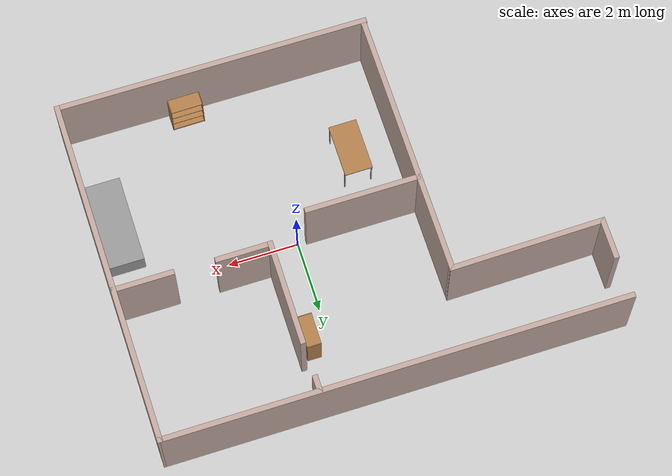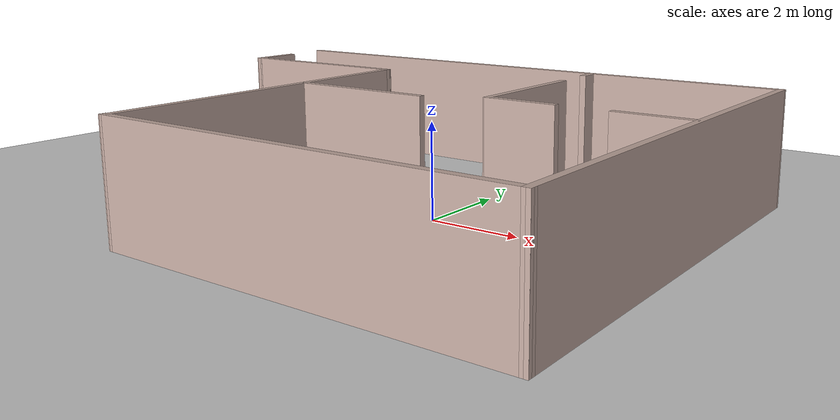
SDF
<sdf version="1.7">
 <world name="default">
  <light name="sun" type="directional">
   <pose>0 0 10 0 -0 0</pose>
   <diffuse>0.8 0.8 0.8 1</diffuse>
   <specular>0.2 0.2 0.2 1</specular>
   <attenuation>
    <range>1000</range>
    <constant>0.9</constant>
    <linear>0.01</linear>
    <quadratic>0.001</quadratic>
   </attenuation>
   <direction>-0.5 0.1 -0.9</direction>
   <spot><inner_angle>0</inner_angle><outer_angle>0</outer_angle><falloff>0</falloff></spot>
  </light>
  <model name="ground_plane">
   <static>1</static>
   <link name="link">
    <collision name="collision">
     <geometry><plane><normal>0 0 1</normal><size>100 100</size></plane></geometry>
     <surface>
      <contact><collide_bitmask>65535</collide_bitmask></contact>
      <friction><ode><mu>100</mu><mu2>50</mu2></ode></friction>
     </surface>
    </collision>
    <visual name="visual">
     <cast_shadows>0</cast_shadows>
     <geometry><plane><normal>0 0 1</normal><size>100 100</size></plane></geometry>
     <material>
      <script><uri>file://media/materials/scripts/gazebo.material</uri><name>Gazebo/Grey</name></script>
     </material>
    </visual>
   </link>
  </model>
  <gravity>0 0 -9.8</gravity>
  <magnetic_field>6e-06 2.3e-05 -4.2e-05</magnetic_field>
  <atmosphere type="adiabatic"/>
  <physics type="ode">
   <max_step_size>0.001</max_step_size>
   <real_time_factor>1</real_time_factor>
   <real_time_update_rate>1000</real_time_update_rate>
  </physics>
  <scene><ambient>0.4 0.4 0.4 1</ambient><background>0.7 0.7 0.7 1</background><shadows>1</shadows></scene>
  <spherical_coordinates>
   <surface_model>EARTH_WGS84</surface_model>
   <latitude_deg>0</latitude_deg>
   <longitude_deg>0</longitude_deg>
   <elevation>0</elevation>
   <heading_deg>0</heading_deg>
  </spherical_coordinates>
  <model name="home2018">
   <pose>-1.25017 0.009364 0 0 -0 0</pose>
   <link name="Wall_0">
    <collision name="Wall_0_Collision">
     <geometry><box><size>13.1702 0.15 2.5</size></box></geometry>
     <pose>0 0 1.25 0 -0 0</pose>
    </collision>
    <visual name="Wall_0_Visual">
     <pose>0 0 1.25 0 -0 0</pose>
     <geometry><box><size>13.1702 0.15 2.5</size></box></geometry>
     <material>
      <script><uri>file://media/materials/scripts/gazebo.material</uri><name>Gazebo/Grey</name></script>
      <ambient>0.760784 0.662745 0.627451 1</ambient>
     </material>
     <meta><layer>0</layer></meta>
    </visual>
    <pose>-0.026804 4.8851 0 0 -0 0</pose>
   </link>
   <link name="Wall_1">
    <collision name="Wall_1_Collision">
     <geometry><box><size>9.92024 0.15 2.5</size></box></geometry>
     <pose>0 0 1.25 0 -0 0</pose>
    </collision>
    <visual name="Wall_1_Visual">
     <pose>0 0 1.25 0 -0 0</pose>
     <geometry><box><size>9.92024 0.15 2.5</size></box></geometry>
     <material>
      <script><uri>file://media/materials/scripts/gazebo.material</uri><name>Gazebo/Grey</name></script>
      <ambient>0.760784 0.662745 0.627451 1</ambient>
     </material>
     <meta><layer>0</layer></meta>
    </visual>
    <pose>6.5099 0 0 0 -0 -1.56535</pose>
   </link>
   <link name="Wall_10">
    <collision name="Wall_10_Collision">
     <geometry><box><size>1.5904 0.15 2.5</size></box></geometry>
     <pose>0 0 1.25 0 -0 0</pose>
    </collision>
    <visual name="Wall_10_Visual">
     <pose>0 0 1.25 0 -0 0</pose>
     <geometry><box><size>1.5904 0.15 2.5</size></box></geometry>
     <material>
      <script><uri>file://media/materials/scripts/gazebo.material</uri><name>Gazebo/Grey</name></script>
      <ambient>0.760784 0.662745 0.627451 1</ambient>
     </material>
     <meta><layer>0</layer></meta>
    </visual>
    <pose>2.90816 0.598689 0 0 -0 0</pose>
   </link>
   <link name="Wall_12">
    <collision name="Wall_12_Collision">
     <geometry><box><size>1.75 0.15 2.5</size></box></geometry>
     <pose>0 0 1.25 0 -0 0</pose>
    </collision>
    <visual name="Wall_12_Visual">
     <pose>0 0 1.25 0 -0 0</pose>
     <geometry><box><size>1.75 0.15 2.5</size></box></geometry>
     <material>
      <script><uri>file://media/materials/scripts/gazebo.material</uri><name>Gazebo/Grey</name></script>
      <ambient>0.760784 0.662745 0.627451 1</ambient>
     </material>
     <meta><layer>0</layer></meta>
    </visual>
    <pose>5.69719 0.575868 0 0 -0 3.14159</pose>
   </link>
   <link name="Wall_14">
    <collision name="Wall_14_Collision">
     <geometry><box><size>3.25 0.15 2.5</size></box></geometry>
     <pose>0 0 1.25 0 -0 0</pose>
    </collision>
    <visual name="Wall_14_Visual">
     <pose>0 0 1.25 0 -0 0</pose>
     <geometry><box><size>3.25 0.15 2.5</size></box></geometry>
     <material>
      <script><uri>file://media/materials/scripts/gazebo.material</uri><name>Gazebo/Grey</name></script>
      <ambient>0.760784 0.662745 0.627451 1</ambient>
     </material>
     <meta><layer>0</layer></meta>
    </visual>
    <pose>-0.61064 -0.019479 0 0 -0 0</pose>
   </link>
   <link name="Wall_2">
    <collision name="Wall_2_Collision">
     <geometry><box><size>8.89364 0.15 2.5</size></box></geometry>
     <pose>0 0 1.25 0 -0 0</pose>
    </collision>
    <visual name="Wall_2_Visual">
     <pose>0 0 1.25 0 -0 0</pose>
     <geometry><box><size>8.89364 0.15 2.5</size></box></geometry>
     <material>
      <script><uri>file://media/materials/scripts/gazebo.material</uri><name>Gazebo/Grey</name></script>
      <ambient>0.760784 0.662745 0.627451 1</ambient>
     </material>
     <meta><layer>0</layer></meta>
    </visual>
    <pose>2.1647 -4.8718 0 0 -0 3.13855</pose>
   </link>
   <link name="Wall_3">
    <collision name="Wall_3_Collision">
     <geometry><box><size>7.69685 0.15 2.5</size></box></geometry>
     <pose>0 0 1.25 0 -0 0</pose>
    </collision>
    <visual name="Wall_3_Visual">
     <pose>0 0 1.25 0 -0 0</pose>
     <geometry><box><size>7.69685 0.15 2.5</size></box></geometry>
     <material>
      <script><uri>file://media/materials/scripts/gazebo.material</uri><name>Gazebo/Grey</name></script>
      <ambient>0.760784 0.662745 0.627451 1</ambient>
     </material>
     <meta><layer>0</layer></meta>
    </visual>
    <pose>-2.2071 -1.0851 0 0 -0 1.57785</pose>
   </link>
   <link name="Wall_4">
    <collision name="Wall_4_Collision">
     <geometry><box><size>4.38333 0.15 2.5</size></box></geometry>
     <pose>0 0 1.25 0 -0 0</pose>
    </collision>
    <visual name="Wall_4_Visual">
     <pose>0 0 1.25 0 -0 0</pose>
     <geometry><box><size>4.38333 0.15 2.5</size></box></geometry>
     <material>
      <script><uri>file://media/materials/scripts/gazebo.material</uri><name>Gazebo/Grey</name></script>
      <ambient>0.760784 0.662745 0.627451 1</ambient>
     </material>
     <meta><layer>0</layer></meta>
    </visual>
    <pose>-4.3502 2.6883 0 0 -0 -3.12902</pose>
   </link>
   <link name="Wall_5">
    <collision name="Wall_5_Collision">
     <geometry><box><size>1.1968 0.15 2.5</size></box></geometry>
     <pose>0 0 1.25 0 -0 0</pose>
    </collision>
    <visual name="Wall_5_Visual">
     <pose>0 0 1.25 0 -0 0</pose>
     <geometry><box><size>1.1968 0.15 2.5</size></box></geometry>
     <material>
      <script><uri>file://media/materials/scripts/gazebo.material</uri><name>Gazebo/Grey</name></script>
      <ambient>0.760784 0.662745 0.627451 1</ambient>
     </material>
     <meta><layer>0</layer></meta>
    </visual>
    <pose>-6.4933 3.1851 0 0 -0 1.5708</pose>
   </link>
   <link name="Wall_7">
    <collision name="Wall_7_Collision">
     <geometry><box><size>0.5 0.15 2.5</size></box></geometry>
     <pose>0 0 1.25 0 -0 0</pose>
    </collision>
    <visual name="Wall_7_Visual">
     <pose>0 0 1.25 0 -0 0</pose>
     <geometry><box><size>0.5 0.15 2.5</size></box></geometry>
     <material>
      <script><uri>file://media/materials/scripts/gazebo.material</uri><name>Gazebo/Grey</name></script>
      <ambient>0.760784 0.662745 0.627451 1</ambient>
     </material>
     <meta><layer>0</layer></meta>
    </visual>
    <pose>2.13476 4.6835 0 0 -0 -1.5708</pose>
   </link>
   <link name="Wall_9">
    <collision name="Wall_9_Collision">
     <geometry><box><size>3 0.15 2.5</size></box></geometry>
     <pose>0 0 1.25 0 -0 0</pose>
    </collision>
    <visual name="Wall_9_Visual">
     <pose>0 0 1.25 0 -0 0</pose>
     <geometry><box><size>3 0.15 2.5</size></box></geometry>
     <material>
      <script><uri>file://media/materials/scripts/gazebo.material</uri><name>Gazebo/Grey</name></script>
      <ambient>0.760784 0.662745 0.627451 1</ambient>
     </material>
     <meta><layer>0</layer></meta>
    </visual>
    <pose>2.16136 2.02369 0 0 -0 -1.5708</pose>
   </link>
   <static>1</static>
  </model>
  <model name="bookshelf">
   <static>1</static>
   <link name="link">
    <inertial><mass>1</mass></inertial>
    <collision name="back">
     <pose>0 0.005 0.6 0 -0 0</pose>
     <geometry><box><size>0.9 0.01 1.2</size></box></geometry>
    </collision>
    <visual name="visual1">
     <pose>0 0.005 0.6 0 -0 0</pose>
     <geometry><box><size>0.9 0.01 1.2</size></box></geometry>
     <material>
      <script><uri>file://media/materials/scripts/gazebo.material</uri><name>Gazebo/Wood</name></script>
     </material>
    </visual>
    <collision name="left_side">
     <pose>0.45 -0.195 0.6 0 -0 0</pose>
     <geometry><box><size>0.02 0.4 1.2</size></box></geometry>
    </collision>
    <visual name="visual2">
     <pose>0.45 -0.195 0.6 0 -0 0</pose>
     <geometry><box><size>0.02 0.4 1.2</size></box></geometry>
     <material>
      <script><uri>file://media/materials/scripts/gazebo.material</uri><name>Gazebo/Wood</name></script>
     </material>
    </visual>
    <collision name="right_side">
     <pose>-0.45 -0.195 0.6 0 -0 0</pose>
     <geometry><box><size>0.02 0.4 1.2</size></box></geometry>
    </collision>
    <visual name="visual3">
     <pose>-0.45 -0.195 0.6 0 -0 0</pose>
     <geometry><box><size>0.02 0.4 1.2</size></box></geometry>
     <material>
      <script><uri>file://media/materials/scripts/gazebo.material</uri><name>Gazebo/Wood</name></script>
     </material>
    </visual>
    <collision name="bottom">
     <pose>0 -0.195 0.03 0 -0 0</pose>
     <geometry><box><size>0.88 0.4 0.06</size></box></geometry>
    </collision>
    <visual name="visual4">
     <pose>0 -0.195 0.03 0 -0 0</pose>
     <geometry><box><size>0.88 0.4 0.06</size></box></geometry>
     <material>
      <script><uri>file://media/materials/scripts/gazebo.material</uri><name>Gazebo/Wood</name></script>
     </material>
    </visual>
    <collision name="top">
     <pose>0 -0.195 1.19 0 -0 0</pose>
     <geometry><box><size>0.88 0.4 0.02</size></box></geometry>
    </collision>
    <visual name="visual5">
     <pose>0 -0.195 1.19 0 -0 0</pose>
     <geometry><box><size>0.88 0.4 0.02</size></box></geometry>
     <material>
      <script><uri>file://media/materials/scripts/gazebo.material</uri><name>Gazebo/Wood</name></script>
     </material>
    </visual>
    <collision name="low_shelf">
     <pose>0 -0.195 0.43 0 -0 0</pose>
     <geometry><box><size>0.88 0.4 0.02</size></box></geometry>
    </collision>
    <visual name="visual6">
     <pose>0 -0.195 0.43 0 -0 0</pose>
     <geometry><box><size>0.88 0.4 0.02</size></box></geometry>
     <material>
      <script><uri>file://media/materials/scripts/gazebo.material</uri><name>Gazebo/Wood</name></script>
     </material>
    </visual>
    <collision name="high_shelf">
     <pose>0 -0.195 0.8 0 -0 0</pose>
     <geometry><box><size>0.88 0.4 0.02</size></box></geometry>
    </collision>
    <visual name="visual7">
     <pose>0 -0.195 0.8 0 -0 0</pose>
     <geometry><box><size>0.88 0.4 0.02</size></box></geometry>
     <material>
      <script><uri>file://media/materials/scripts/gazebo.material</uri><name>Gazebo/Wood</name></script>
     </material>
    </visual>
   </link>
   <pose>0.737119 2.83138 0 0 0 -1.57351</pose>
  </model>
  <model name="table">
   <static>1</static>
   <link name="link">
    <collision name="surface">
     <pose>0 0 1 0 -0 0</pose>
     <geometry><box><size>1.5 0.8 0.03</size></box></geometry>
     <surface><friction><ode><mu>0.6</mu><mu2>0.6</mu2></ode></friction></surface>
    </collision>
    <visual name="visual1">
     <pose>0 0 1 0 -0 0</pose>
     <geometry><box><size>1.5 0.8 0.03</size></box></geometry>
     <material>
      <script><uri>file://media/materials/scripts/gazebo.material</uri><name>Gazebo/Wood</name></script>
     </material>
    </visual>
    <collision name="front_left_leg">
     <pose>0.68 0.38 0.5 0 -0 0</pose>
     <geometry><cylinder><radius>0.02</radius><length>1</length></cylinder></geometry>
    </collision>
    <visual name="front_left_leg">
     <pose>0.68 0.38 0.5 0 -0 0</pose>
     <geometry><cylinder><radius>0.02</radius><length>1</length></cylinder></geometry>
     <material>
      <script><uri>file://media/materials/scripts/gazebo.material</uri><name>Gazebo/Grey</name></script>
     </material>
    </visual>
    <collision name="front_right_leg">
     <pose>0.68 -0.38 0.5 0 -0 0</pose>
     <geometry><cylinder><radius>0.02</radius><length>1</length></cylinder></geometry>
    </collision>
    <visual name="front_right_leg">
     <pose>0.68 -0.38 0.5 0 -0 0</pose>
     <geometry><cylinder><radius>0.02</radius><length>1</length></cylinder></geometry>
     <material>
      <script><uri>file://media/materials/scripts/gazebo.material</uri><name>Gazebo/Grey</name></script>
     </material>
    </visual>
    <collision name="back_right_leg">
     <pose>-0.68 -0.38 0.5 0 -0 0</pose>
     <geometry><cylinder><radius>0.02</radius><length>1</length></cylinder></geometry>
    </collision>
    <visual name="back_right_leg">
     <pose>-0.68 -0.38 0.5 0 -0 0</pose>
     <geometry><cylinder><radius>0.02</radius><length>1</length></cylinder></geometry>
     <material>
      <script><uri>file://media/materials/scripts/gazebo.material</uri><name>Gazebo/Grey</name></script>
     </material>
    </visual>
    <collision name="back_left_leg">
     <pose>-0.68 0.38 0.5 0 -0 0</pose>
     <geometry><cylinder><radius>0.02</radius><length>1</length></cylinder></geometry>
    </collision>
    <visual name="back_left_leg">
     <pose>-0.68 0.38 0.5 0 -0 0</pose>
     <geometry><cylinder><radius>0.02</radius><length>1</length></cylinder></geometry>
     <material>
      <script><uri>file://media/materials/scripts/gazebo.material</uri><name>Gazebo/Grey</name></script>
     </material>
    </visual>
   </link>
   <pose>-2.15138 -1.93992 0 0 -0 1.57551</pose>
  </model>
  <model name="bookshelf_clone">
   <static>1</static>
   <link name="link">
    <inertial><mass>1</mass></inertial>
    <collision name="back">
     <pose>0 0.005 0.6 0 -0 0</pose>
     <geometry><box><size>0.9 0.01 1.2</size></box></geometry>
    </collision>
    <visual name="visual1">
     <pose>0 0.005 0.6 0 -0 0</pose>
     <geometry><box><size>0.9 0.01 1.2</size></box></geometry>
     <material>
      <script><uri>file://media/materials/scripts/gazebo.material</uri><name>Gazebo/Wood</name></script>
     </material>
    </visual>
    <collision name="left_side">
     <pose>0.45 -0.195 0.6 0 -0 0</pose>
     <geometry><box><size>0.02 0.4 1.2</size></box></geometry>
    </collision>
    <visual name="visual2">
     <pose>0.45 -0.195 0.6 0 -0 0</pose>
     <geometry><box><size>0.02 0.4 1.2</size></box></geometry>
     <material>
      <script><uri>file://media/materials/scripts/gazebo.material</uri><name>Gazebo/Wood</name></script>
     </material>
    </visual>
    <collision name="right_side">
     <pose>-0.45 -0.195 0.6 0 -0 0</pose>
     <geometry><box><size>0.02 0.4 1.2</size></box></geometry>
    </collision>
    <visual name="visual3">
     <pose>-0.45 -0.195 0.6 0 -0 0</pose>
     <geometry><box><size>0.02 0.4 1.2</size></box></geometry>
     <material>
      <script><uri>file://media/materials/scripts/gazebo.material</uri><name>Gazebo/Wood</name></script>
     </material>
    </visual>
    <collision name="bottom">
     <pose>0 -0.195 0.03 0 -0 0</pose>
     <geometry><box><size>0.88 0.4 0.06</size></box></geometry>
    </collision>
    <visual name="visual4">
     <pose>0 -0.195 0.03 0 -0 0</pose>
     <geometry><box><size>0.88 0.4 0.06</size></box></geometry>
     <material>
      <script><uri>file://media/materials/scripts/gazebo.material</uri><name>Gazebo/Wood</name></script>
     </material>
    </visual>
    <collision name="top">
     <pose>0 -0.195 1.19 0 -0 0</pose>
     <geometry><box><size>0.88 0.4 0.02</size></box></geometry>
    </collision>
    <visual name="visual5">
     <pose>0 -0.195 1.19 0 -0 0</pose>
     <geometry><box><size>0.88 0.4 0.02</size></box></geometry>
     <material>
      <script><uri>file://media/materials/scripts/gazebo.material</uri><name>Gazebo/Wood</name></script>
     </material>
    </visual>
    <collision name="low_shelf">
     <pose>0 -0.195 0.43 0 -0 0</pose>
     <geometry><box><size>0.88 0.4 0.02</size></box></geometry>
    </collision>
    <visual name="visual6">
     <pose>0 -0.195 0.43 0 -0 0</pose>
     <geometry><box><size>0.88 0.4 0.02</size></box></geometry>
     <material>
      <script><uri>file://media/materials/scripts/gazebo.material</uri><name>Gazebo/Wood</name></script>
     </material>
    </visual>
    <collision name="high_shelf">
     <pose>0 -0.195 0.8 0 -0 0</pose>
     <geometry><box><size>0.88 0.4 0.02</size></box></geometry>
    </collision>
    <visual name="visual7">
     <pose>0 -0.195 0.8 0 -0 0</pose>
     <geometry><box><size>0.88 0.4 0.02</size></box></geometry>
     <material>
      <script><uri>file://media/materials/scripts/gazebo.material</uri><name>Gazebo/Wood</name></script>
     </material>
    </visual>
   </link>
   <pose>1.84847 -4.73265 0 0 -0 -3.13544</pose>
  </model>
  <model name="unit_box">
   <link name="link">
    <inertial>
     <mass>1.69055</mass>
     <inertia><ixx>0.939375</ixx><ixy>0</ixy><ixz>0</ixz><iyy>0.20574</iyy><iyz>0</iyz><izz>1.01539</izz></inertia>
    </inertial>
    <pose>0.327308 -0.906652 0 0 -0 0</pose>
    <visual name="visual">
     <geometry><box><size>1 2.4915 0.678525</size></box></geometry>
     <material>
      <script><name>Gazebo/Grey</name><uri>file://media/materials/scripts/gazebo.material</uri></script>
      <shader type="pixel"/>
     </material>
    </visual>
    <collision name="collision">
     <geometry><box><size>1 2.4915 0.678525</size></box></geometry>
     <surface>
      <friction>
       <ode><mu>1</mu><mu2>1</mu2><fdir1>0 0 0</fdir1><slip1>0</slip1><slip2>0</slip2></ode>
       <torsional>
        <coefficient>1</coefficient>
        <patch_radius>0</patch_radius>
        <surface_radius>0</surface_radius>
        <use_patch_radius>1</use_patch_radius>
        <ode><slip>0</slip></ode>
       </torsional>
      </friction>
      <bounce><restitution_coefficient>0</restitution_coefficient><threshold>1e+06</threshold></bounce>
      <contact>
       <collide_without_contact>0</collide_without_contact>
       <collide_without_contact_bitmask>1</collide_without_contact_bitmask>
       <collide_bitmask>1</collide_bitmask>
       <ode>
        <soft_cfm>0</soft_cfm>
        <soft_erp>0.2</soft_erp>
        <kp>1e+13</kp>
        <kd>1</kd>
        <max_vel>0.01</max_vel>
        <min_depth>0</min_depth>
       </ode>
       <bullet>
        <split_impulse>1</split_impulse>
        <split_impulse_penetration_threshold>-0.01</split_impulse_penetration_threshold>
        <soft_cfm>0</soft_cfm>
        <soft_erp>0.2</soft_erp>
        <kp>1e+13</kp>
        <kd>1</kd>
       </bullet>
      </contact>
     </surface>
    </collision>
   </link>
   <static>0</static>
   <pose>4.35259 -1 0.334871 -1e-05 0 0</pose>
  </model>
 </world>
</sdf>
